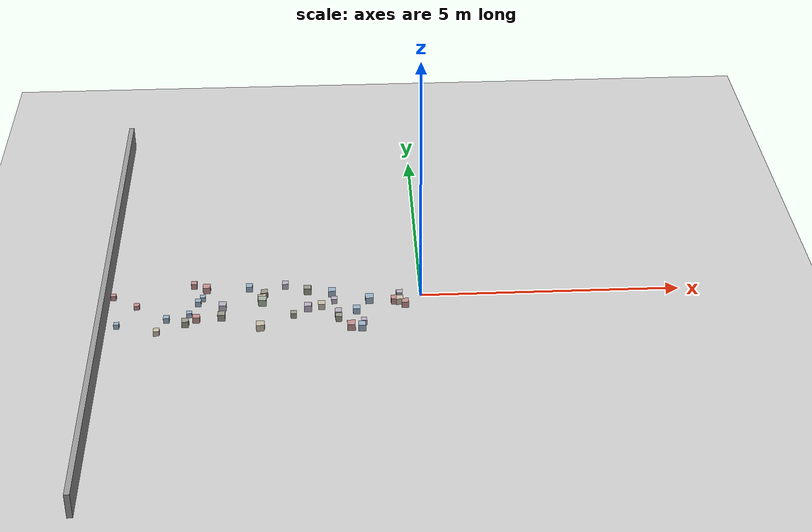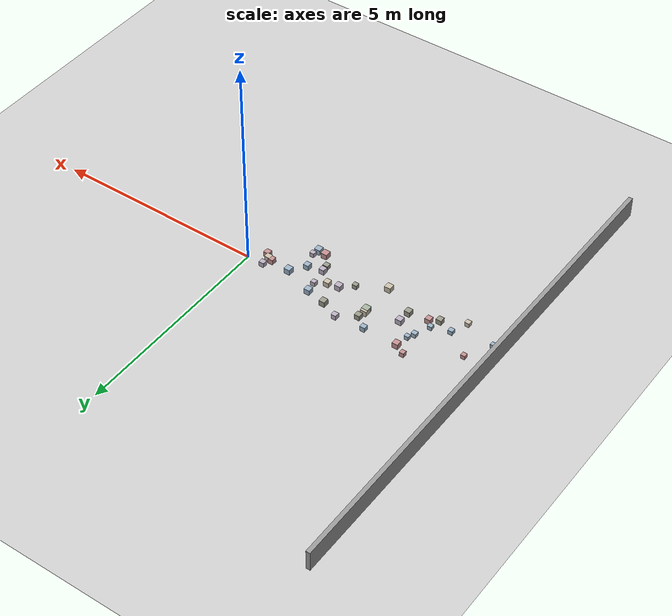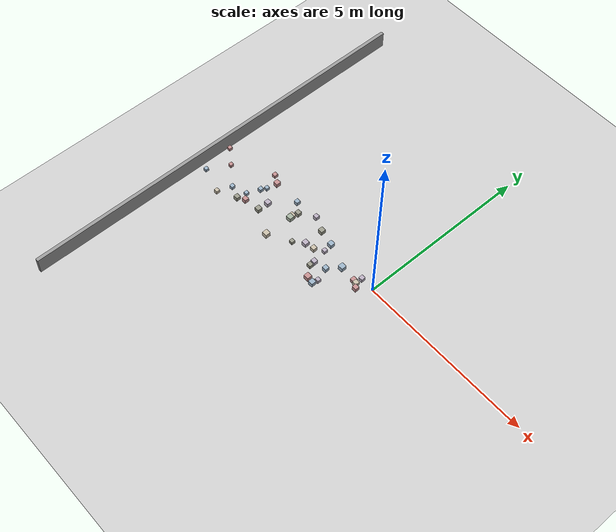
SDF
<sdf version="1.6">
 <world name="small_maze_world">
  <include><uri>model://ground_plane</uri></include>
  <include><uri>model://sun</uri></include>
  <model name="wall_west">
   <static>true</static>
   <pose>-6 0 0.25 0 0 0</pose>
   <link name="link">
    <collision name="collision"><geometry><box><size>0.1 12 0.5</size></box></geometry></collision>
    <visual name="visual">
     <geometry><box><size>0.1 12 0.5</size></box></geometry>
     <material><ambient>0.6 0.6 0.6 1</ambient></material>
    </visual>
   </link>
  </model>
  <model name="box_12">
   <static>false</static>
   <pose>-5.74 -0.78 0.05 0 0 0</pose>
   <link name="link">
    <inertial>
     <mass>0.2</mass>
     <inertia><ixx>0.001</ixx><iyy>0.001</iyy><izz>0.001</izz><ixy>0</ixy><ixz>0</ixz><iyz>0</iyz></inertia>
    </inertial>
    <collision name="collision"><geometry><box><size>0.1 0.1 0.1</size></box></geometry></collision>
    <visual name="visual">
     <geometry><box><size>0.1 0.1 0.1</size></box></geometry>
     <material><ambient>0.6 0.69 0.77 1</ambient><diffuse>0.6 0.69 0.77 1</diffuse></material>
    </visual>
   </link>
  </model>
  <model name="box_15">
   <static>false</static>
   <pose>-0.99 -0.14 0.05 0 0 0</pose>
   <link name="link">
    <inertial>
     <mass>0.2</mass>
     <inertia><ixx>0.001</ixx><iyy>0.001</iyy><izz>0.001</izz><ixy>0</ixy><ixz>0</ixz><iyz>0</iyz></inertia>
    </inertial>
    <collision name="collision"><geometry><box><size>0.15 0.15 0.15</size></box></geometry></collision>
    <visual name="visual">
     <geometry><box><size>0.15 0.15 0.15</size></box></geometry>
     <material><ambient>0.6 0.69 0.77 1</ambient><diffuse>0.6 0.69 0.77 1</diffuse></material>
    </visual>
   </link>
  </model>
  <model name="box_19">
   <static>false</static>
   <pose>-4.11 0.35 0.05 0 0 0</pose>
   <link name="link">
    <inertial>
     <mass>0.2</mass>
     <inertia><ixx>0.001</ixx><iyy>0.001</iyy><izz>0.001</izz><ixy>0</ixy><ixz>0</ixz><iyz>0</iyz></inertia>
    </inertial>
    <collision name="collision"><geometry><box><size>0.14 0.14 0.14</size></box></geometry></collision>
    <visual name="visual">
     <geometry><box><size>0.14 0.14 0.14</size></box></geometry>
     <material><ambient>0.76 0.56 0.56 1</ambient><diffuse>0.76 0.56 0.56 1</diffuse></material>
    </visual>
   </link>
  </model>
  <model name="box_25">
   <static>false</static>
   <pose>-2.16 -0.35 0.05 0 0 0</pose>
   <link name="link">
    <inertial>
     <mass>0.2</mass>
     <inertia><ixx>0.001</ixx><iyy>0.001</iyy><izz>0.001</izz><ixy>0</ixy><ixz>0</ixz><iyz>0</iyz></inertia>
    </inertial>
    <collision name="collision"><geometry><box><size>0.14 0.14 0.14</size></box></geometry></collision>
    <visual name="visual">
     <geometry><box><size>0.14 0.14 0.14</size></box></geometry>
     <material><ambient>0.72 0.68 0.75 1</ambient><diffuse>0.72 0.68 0.75 1</diffuse></material>
    </visual>
   </link>
  </model>
  <model name="box_27">
   <static>false</static>
   <pose>-1.9 -0.3 0.05 0 0 0</pose>
   <link name="link">
    <inertial>
     <mass>0.2</mass>
     <inertia><ixx>0.001</ixx><iyy>0.001</iyy><izz>0.001</izz><ixy>0</ixy><ixz>0</ixz><iyz>0</iyz></inertia>
    </inertial>
    <collision name="collision"><geometry><box><size>0.13 0.13 0.13</size></box></geometry></collision>
    <visual name="visual">
     <geometry><box><size>0.13 0.13 0.13</size></box></geometry>
     <material><ambient>0.78 0.74 0.66 1</ambient><diffuse>0.78 0.74 0.66 1</diffuse></material>
    </visual>
   </link>
  </model>
  <model name="box_50">
   <static>false</static>
   <pose>-1.59 -0.56 0.05 0 0 0</pose>
   <link name="link">
    <inertial>
     <mass>0.2</mass>
     <inertia><ixx>0.001</ixx><iyy>0.001</iyy><izz>0.001</izz><ixy>0</ixy><ixz>0</ixz><iyz>0</iyz></inertia>
    </inertial>
    <collision name="collision"><geometry><box><size>0.13 0.13 0.13</size></box></geometry></collision>
    <visual name="visual">
     <geometry><box><size>0.13 0.13 0.13</size></box></geometry>
     <material><ambient>0.72 0.68 0.75 1</ambient><diffuse>0.72 0.68 0.75 1</diffuse></material>
    </visual>
   </link>
  </model>
  <model name="box_58">
   <static>false</static>
   <pose>-2.43 -0.58 0.05 0 0 0</pose>
   <link name="link">
    <inertial>
     <mass>0.2</mass>
     <inertia><ixx>0.001</ixx><iyy>0.001</iyy><izz>0.001</izz><ixy>0</ixy><ixz>0</ixz><iyz>0</iyz></inertia>
    </inertial>
    <collision name="collision"><geometry><box><size>0.11 0.11 0.11</size></box></geometry></collision>
    <visual name="visual">
     <geometry><box><size>0.11 0.11 0.11</size></box></geometry>
     <material><ambient>0.6 0.6 0.54 1</ambient><diffuse>0.6 0.6 0.54 1</diffuse></material>
    </visual>
   </link>
  </model>
  <model name="box_90">
   <static>false</static>
   <pose>-3.04 -0.06 0.05 0 0 0</pose>
   <link name="link">
    <inertial>
     <mass>0.2</mass>
     <inertia><ixx>0.001</ixx><iyy>0.001</iyy><izz>0.001</izz><ixy>0</ixy><ixz>0</ixz><iyz>0</iyz></inertia>
    </inertial>
    <collision name="collision"><geometry><box><size>0.15 0.15 0.15</size></box></geometry></collision>
    <visual name="visual">
     <geometry><box><size>0.15 0.15 0.15</size></box></geometry>
     <material><ambient>0.78 0.74 0.66 1</ambient><diffuse>0.78 0.74 0.66 1</diffuse></material>
    </visual>
   </link>
  </model>
  <model name="box_99">
   <static>false</static>
   <pose>-4.98 -1.02 0.05 0 0 0</pose>
   <link name="link">
    <inertial>
     <mass>0.2</mass>
     <inertia><ixx>0.001</ixx><iyy>0.001</iyy><izz>0.001</izz><ixy>0</ixy><ixz>0</ixz><iyz>0</iyz></inertia>
    </inertial>
    <collision name="collision"><geometry><box><size>0.11 0.11 0.11</size></box></geometry></collision>
    <visual name="visual">
     <geometry><box><size>0.11 0.11 0.11</size></box></geometry>
     <material><ambient>0.78 0.74 0.66 1</ambient><diffuse>0.78 0.74 0.66 1</diffuse></material>
    </visual>
   </link>
  </model>
  <model name="box_100">
   <static>false</static>
   <pose>-3.03 -0.12 0.05 0 0 0</pose>
   <link name="link">
    <inertial>
     <mass>0.2</mass>
     <inertia><ixx>0.001</ixx><iyy>0.001</iyy><izz>0.001</izz><ixy>0</ixy><ixz>0</ixz><iyz>0</iyz></inertia>
    </inertial>
    <collision name="collision"><geometry><box><size>0.15 0.15 0.15</size></box></geometry></collision>
    <visual name="visual">
     <geometry><box><size>0.15 0.15 0.15</size></box></geometry>
     <material><ambient>0.64 0.69 0.62 1</ambient><diffuse>0.64 0.69 0.62 1</diffuse></material>
    </visual>
   </link>
  </model>
  <model name="box_105">
   <static>false</static>
   <pose>-4.17 0.04 0.05 0 0 0</pose>
   <link name="link">
    <inertial>
     <mass>0.2</mass>
     <inertia><ixx>0.001</ixx><iyy>0.001</iyy><izz>0.001</izz><ixy>0</ixy><ixz>0</ixz><iyz>0</iyz></inertia>
    </inertial>
    <collision name="collision"><geometry><box><size>0.1 0.1 0.1</size></box></geometry></collision>
    <visual name="visual">
     <geometry><box><size>0.1 0.1 0.1</size></box></geometry>
     <material><ambient>0.6 0.69 0.77 1</ambient><diffuse>0.6 0.69 0.77 1</diffuse></material>
    </visual>
   </link>
  </model>
  <model name="box_108">
   <static>false</static>
   <pose>-1.35 -0.99 0.05 0 0 0</pose>
   <link name="link">
    <inertial>
     <mass>0.2</mass>
     <inertia><ixx>0.001</ixx><iyy>0.001</iyy><izz>0.001</izz><ixy>0</ixy><ixz>0</ixz><iyz>0</iyz></inertia>
    </inertial>
    <collision name="collision"><geometry><box><size>0.15 0.15 0.15</size></box></geometry></collision>
    <visual name="visual">
     <geometry><box><size>0.15 0.15 0.15</size></box></geometry>
     <material><ambient>0.76 0.56 0.56 1</ambient><diffuse>0.76 0.56 0.56 1</diffuse></material>
    </visual>
   </link>
  </model>
  <model name="box_118">
   <static>false</static>
   <pose>-4.4 -0.48 0.05 0 0 0</pose>
   <link name="link">
    <inertial>
     <mass>0.2</mass>
     <inertia><ixx>0.001</ixx><iyy>0.001</iyy><izz>0.001</izz><ixy>0</ixy><ixz>0</ixz><iyz>0</iyz></inertia>
    </inertial>
    <collision name="collision"><geometry><box><size>0.1 0.1 0.1</size></box></geometry></collision>
    <visual name="visual">
     <geometry><box><size>0.1 0.1 0.1</size></box></geometry>
     <material><ambient>0.6 0.69 0.77 1</ambient><diffuse>0.6 0.69 0.77 1</diffuse></material>
    </visual>
   </link>
  </model>
  <model name="box_131">
   <static>false</static>
   <pose>-1.58 -0.71 0.05 0 0 0</pose>
   <link name="link">
    <inertial>
     <mass>0.2</mass>
     <inertia><ixx>0.001</ixx><iyy>0.001</iyy><izz>0.001</izz><ixy>0</ixy><ixz>0</ixz><iyz>0</iyz></inertia>
    </inertial>
    <collision name="collision"><geometry><box><size>0.12 0.12 0.12</size></box></geometry></collision>
    <visual name="visual">
     <geometry><box><size>0.12 0.12 0.12</size></box></geometry>
     <material><ambient>0.6 0.6 0.54 1</ambient><diffuse>0.6 0.6 0.54 1</diffuse></material>
    </visual>
   </link>
  </model>
  <model name="box_172">
   <static>false</static>
   <pose>-3.0 0.13 0.05 0 0 0</pose>
   <link name="link">
    <inertial>
     <mass>0.2</mass>
     <inertia><ixx>0.001</ixx><iyy>0.001</iyy><izz>0.001</izz><ixy>0</ixy><ixz>0</ixz><iyz>0</iyz></inertia>
    </inertial>
    <collision name="collision"><geometry><box><size>0.13 0.13 0.13</size></box></geometry></collision>
    <visual name="visual">
     <geometry><box><size>0.13 0.13 0.13</size></box></geometry>
     <material><ambient>0.6 0.6 0.54 1</ambient><diffuse>0.6 0.6 0.54 1</diffuse></material>
    </visual>
   </link>
  </model>
  <model name="box_207">
   <static>false</static>
   <pose>-0.41 0.01 0.05 0 0 0</pose>
   <link name="link">
    <inertial>
     <mass>0.2</mass>
     <inertia><ixx>0.001</ixx><iyy>0.001</iyy><izz>0.001</izz><ixy>0</ixy><ixz>0</ixz><iyz>0</iyz></inertia>
    </inertial>
    <collision name="collision"><geometry><box><size>0.12 0.12 0.12</size></box></geometry></collision>
    <visual name="visual">
     <geometry><box><size>0.12 0.12 0.12</size></box></geometry>
     <material><ambient>0.72 0.68 0.75 1</ambient><diffuse>0.72 0.68 0.75 1</diffuse></material>
    </visual>
   </link>
  </model>
  <model name="box_237">
   <static>false</static>
   <pose>-0.41 -0.2 0.05 0 0 0</pose>
   <link name="link">
    <inertial>
     <mass>0.2</mass>
     <inertia><ixx>0.001</ixx><iyy>0.001</iyy><izz>0.001</izz><ixy>0</ixy><ixz>0</ixz><iyz>0</iyz></inertia>
    </inertial>
    <collision name="collision"><geometry><box><size>0.13 0.13 0.13</size></box></geometry></collision>
    <visual name="visual">
     <geometry><box><size>0.13 0.13 0.13</size></box></geometry>
     <material><ambient>0.78 0.74 0.66 1</ambient><diffuse>0.78 0.74 0.66 1</diffuse></material>
    </visual>
   </link>
  </model>
  <model name="box_254">
   <static>false</static>
   <pose>-3.05 -0.93 0.05 0 0 0</pose>
   <link name="link">
    <inertial>
     <mass>0.2</mass>
     <inertia><ixx>0.001</ixx><iyy>0.001</iyy><izz>0.001</izz><ixy>0</ixy><ixz>0</ixz><iyz>0</iyz></inertia>
    </inertial>
    <collision name="collision"><geometry><box><size>0.15 0.15 0.15</size></box></geometry></collision>
    <visual name="visual">
     <geometry><box><size>0.15 0.15 0.15</size></box></geometry>
     <material><ambient>0.78 0.74 0.66 1</ambient><diffuse>0.78 0.74 0.66 1</diffuse></material>
    </visual>
   </link>
  </model>
  <model name="box_255">
   <static>false</static>
   <pose>-4.26 -0.63 0.05 0 0 0</pose>
   <link name="link">
    <inertial>
     <mass>0.2</mass>
     <inertia><ixx>0.001</ixx><iyy>0.001</iyy><izz>0.001</izz><ixy>0</ixy><ixz>0</ixz><iyz>0</iyz></inertia>
    </inertial>
    <collision name="collision"><geometry><box><size>0.13 0.13 0.13</size></box></geometry></collision>
    <visual name="visual">
     <geometry><box><size>0.13 0.13 0.13</size></box></geometry>
     <material><ambient>0.76 0.56 0.56 1</ambient><diffuse>0.76 0.56 0.56 1</diffuse></material>
    </visual>
   </link>
  </model>
  <model name="box_264">
   <static>false</static>
   <pose>-4.25 -0.11 0.05 0 0 0</pose>
   <link name="link">
    <inertial>
     <mass>0.2</mass>
     <inertia><ixx>0.001</ixx><iyy>0.001</iyy><izz>0.001</izz><ixy>0</ixy><ixz>0</ixz><iyz>0</iyz></inertia>
    </inertial>
    <collision name="collision"><geometry><box><size>0.11 0.11 0.11</size></box></geometry></collision>
    <visual name="visual">
     <geometry><box><size>0.11 0.11 0.11</size></box></geometry>
     <material><ambient>0.6 0.69 0.77 1</ambient><diffuse>0.6 0.69 0.77 1</diffuse></material>
    </visual>
   </link>
  </model>
  <model name="box_294">
   <static>false</static>
   <pose>-0.51 -0.18 0.05 0 0 0</pose>
   <link name="link">
    <inertial>
     <mass>0.2</mass>
     <inertia><ixx>0.001</ixx><iyy>0.001</iyy><izz>0.001</izz><ixy>0</ixy><ixz>0</ixz><iyz>0</iyz></inertia>
    </inertial>
    <collision name="collision"><geometry><box><size>0.13 0.13 0.13</size></box></geometry></collision>
    <visual name="visual">
     <geometry><box><size>0.13 0.13 0.13</size></box></geometry>
     <material><ambient>0.76 0.56 0.56 1</ambient><diffuse>0.76 0.56 0.56 1</diffuse></material>
    </visual>
   </link>
  </model>
  <model name="box_311">
   <static>false</static>
   <pose>-4.46 -0.75 0.05 0 0 0</pose>
   <link name="link">
    <inertial>
     <mass>0.2</mass>
     <inertia><ixx>0.001</ixx><iyy>0.001</iyy><izz>0.001</izz><ixy>0</ixy><ixz>0</ixz><iyz>0</iyz></inertia>
    </inertial>
    <collision name="collision"><geometry><box><size>0.13 0.13 0.13</size></box></geometry></collision>
    <visual name="visual">
     <geometry><box><size>0.13 0.13 0.13</size></box></geometry>
     <material><ambient>0.6 0.6 0.54 1</ambient><diffuse>0.6 0.6 0.54 1</diffuse></material>
    </visual>
   </link>
  </model>
  <model name="box_330">
   <static>false</static>
   <pose>-1.15 -1.02 0.05 0 0 0</pose>
   <link name="link">
    <inertial>
     <mass>0.2</mass>
     <inertia><ixx>0.001</ixx><iyy>0.001</iyy><izz>0.001</izz><ixy>0</ixy><ixz>0</ixz><iyz>0</iyz></inertia>
    </inertial>
    <collision name="collision"><geometry><box><size>0.14 0.14 0.14</size></box></geometry></collision>
    <visual name="visual">
     <geometry><box><size>0.14 0.14 0.14</size></box></geometry>
     <material><ambient>0.6 0.69 0.77 1</ambient><diffuse>0.6 0.69 0.77 1</diffuse></material>
    </visual>
   </link>
  </model>
  <model name="box_342">
   <static>false</static>
   <pose>-1.11 -0.86 0.05 0 0 0</pose>
   <link name="link">
    <inertial>
     <mass>0.2</mass>
     <inertia><ixx>0.001</ixx><iyy>0.001</iyy><izz>0.001</izz><ixy>0</ixy><ixz>0</ixz><iyz>0</iyz></inertia>
    </inertial>
    <collision name="collision"><geometry><box><size>0.11 0.11 0.11</size></box></geometry></collision>
    <visual name="visual">
     <geometry><box><size>0.11 0.11 0.11</size></box></geometry>
     <material><ambient>0.72 0.68 0.75 1</ambient><diffuse>0.72 0.68 0.75 1</diffuse></material>
    </visual>
   </link>
  </model>
  <model name="box_343">
   <static>false</static>
   <pose>-3.29 0.35 0.05 0 0 0</pose>
   <link name="link">
    <inertial>
     <mass>0.2</mass>
     <inertia><ixx>0.001</ixx><iyy>0.001</iyy><izz>0.001</izz><ixy>0</ixy><ixz>0</ixz><iyz>0</iyz></inertia>
    </inertial>
    <collision name="collision"><geometry><box><size>0.12 0.12 0.12</size></box></geometry></collision>
    <visual name="visual">
     <geometry><box><size>0.12 0.12 0.12</size></box></geometry>
     <material><ambient>0.6 0.69 0.77 1</ambient><diffuse>0.6 0.69 0.77 1</diffuse></material>
    </visual>
   </link>
  </model>
  <model name="box_353">
   <static>false</static>
   <pose>-2.17 0.22 0.05 0 0 0</pose>
   <link name="link">
    <inertial>
     <mass>0.2</mass>
     <inertia><ixx>0.001</ixx><iyy>0.001</iyy><izz>0.001</izz><ixy>0</ixy><ixz>0</ixz><iyz>0</iyz></inertia>
    </inertial>
    <collision name="collision"><geometry><box><size>0.14 0.14 0.14</size></box></geometry></collision>
    <visual name="visual">
     <geometry><box><size>0.14 0.14 0.14</size></box></geometry>
     <material><ambient>0.6 0.6 0.54 1</ambient><diffuse>0.6 0.6 0.54 1</diffuse></material>
    </visual>
   </link>
  </model>
  <model name="box_358">
   <static>false</static>
   <pose>-3.79 -0.57 0.05 0 0 0</pose>
   <link name="link">
    <inertial>
     <mass>0.2</mass>
     <inertia><ixx>0.001</ixx><iyy>0.001</iyy><izz>0.001</izz><ixy>0</ixy><ixz>0</ixz><iyz>0</iyz></inertia>
    </inertial>
    <collision name="collision"><geometry><box><size>0.14 0.14 0.14</size></box></geometry></collision>
    <visual name="visual">
     <geometry><box><size>0.14 0.14 0.14</size></box></geometry>
     <material><ambient>0.6 0.6 0.54 1</ambient><diffuse>0.6 0.6 0.54 1</diffuse></material>
    </visual>
   </link>
  </model>
  <model name="box_361">
   <static>false</static>
   <pose>-5.88 0.16 0.05 0 0 0</pose>
   <link name="link">
    <inertial>
     <mass>0.2</mass>
     <inertia><ixx>0.001</ixx><iyy>0.001</iyy><izz>0.001</izz><ixy>0</ixy><ixz>0</ixz><iyz>0</iyz></inertia>
    </inertial>
    <collision name="collision"><geometry><box><size>0.1 0.1 0.1</size></box></geometry></collision>
    <visual name="visual">
     <geometry><box><size>0.1 0.1 0.1</size></box></geometry>
     <material><ambient>0.76 0.56 0.56 1</ambient><diffuse>0.76 0.56 0.56 1</diffuse></material>
    </visual>
   </link>
  </model>
  <model name="box_374">
   <static>false</static>
   <pose>-2.6 0.41 0.05 0 0 0</pose>
   <link name="link">
    <inertial>
     <mass>0.2</mass>
     <inertia><ixx>0.001</ixx><iyy>0.001</iyy><izz>0.001</izz><ixy>0</ixy><ixz>0</ixz><iyz>0</iyz></inertia>
    </inertial>
    <collision name="collision"><geometry><box><size>0.12 0.12 0.12</size></box></geometry></collision>
    <visual name="visual">
     <geometry><box><size>0.12 0.12 0.12</size></box></geometry>
     <material><ambient>0.72 0.68 0.75 1</ambient><diffuse>0.72 0.68 0.75 1</diffuse></material>
    </visual>
   </link>
  </model>
  <model name="box_376">
   <static>false</static>
   <pose>-0.31 -0.3 0.05 0 0 0</pose>
   <link name="link">
    <inertial>
     <mass>0.2</mass>
     <inertia><ixx>0.001</ixx><iyy>0.001</iyy><izz>0.001</izz><ixy>0</ixy><ixz>0</ixz><iyz>0</iyz></inertia>
    </inertial>
    <collision name="collision"><geometry><box><size>0.13 0.13 0.13</size></box></geometry></collision>
    <visual name="visual">
     <geometry><box><size>0.13 0.13 0.13</size></box></geometry>
     <material><ambient>0.76 0.56 0.56 1</ambient><diffuse>0.76 0.56 0.56 1</diffuse></material>
    </visual>
   </link>
  </model>
  <model name="box_384">
   <static>false</static>
   <pose>-4.36 0.49 0.05 0 0 0</pose>
   <link name="link">
    <inertial>
     <mass>0.2</mass>
     <inertia><ixx>0.001</ixx><iyy>0.001</iyy><izz>0.001</izz><ixy>0</ixy><ixz>0</ixz><iyz>0</iyz></inertia>
    </inertial>
    <collision name="collision"><geometry><box><size>0.11 0.11 0.11</size></box></geometry></collision>
    <visual name="visual">
     <geometry><box><size>0.11 0.11 0.11</size></box></geometry>
     <material><ambient>0.76 0.56 0.56 1</ambient><diffuse>0.76 0.56 0.56 1</diffuse></material>
    </visual>
   </link>
  </model>
  <model name="box_388">
   <static>false</static>
   <pose>-1.66 -0.14 0.05 0 0 0</pose>
   <link name="link">
    <inertial>
     <mass>0.2</mass>
     <inertia><ixx>0.001</ixx><iyy>0.001</iyy><izz>0.001</izz><ixy>0</ixy><ixz>0</ixz><iyz>0</iyz></inertia>
    </inertial>
    <collision name="collision"><geometry><box><size>0.11 0.11 0.11</size></box></geometry></collision>
    <visual name="visual">
     <geometry><box><size>0.11 0.11 0.11</size></box></geometry>
     <material><ambient>0.72 0.68 0.75 1</ambient><diffuse>0.72 0.68 0.75 1</diffuse></material>
    </visual>
   </link>
  </model>
  <model name="box_398">
   <static>false</static>
   <pose>-3.78 -0.26 0.05 0 0 0</pose>
   <link name="link">
    <inertial>
     <mass>0.2</mass>
     <inertia><ixx>0.001</ixx><iyy>0.001</iyy><izz>0.001</izz><ixy>0</ixy><ixz>0</ixz><iyz>0</iyz></inertia>
    </inertial>
    <collision name="collision"><geometry><box><size>0.14 0.14 0.14</size></box></geometry></collision>
    <visual name="visual">
     <geometry><box><size>0.14 0.14 0.14</size></box></geometry>
     <material><ambient>0.72 0.68 0.75 1</ambient><diffuse>0.72 0.68 0.75 1</diffuse></material>
    </visual>
   </link>
  </model>
  <model name="box_436">
   <static>false</static>
   <pose>-1.7 0.12 0.05 0 0 0</pose>
   <link name="link">
    <inertial>
     <mass>0.2</mass>
     <inertia><ixx>0.001</ixx><iyy>0.001</iyy><izz>0.001</izz><ixy>0</ixy><ixz>0</ixz><iyz>0</iyz></inertia>
    </inertial>
    <collision name="collision"><geometry><box><size>0.14 0.14 0.14</size></box></geometry></collision>
    <visual name="visual">
     <geometry><box><size>0.14 0.14 0.14</size></box></geometry>
     <material><ambient>0.6 0.69 0.77 1</ambient><diffuse>0.6 0.69 0.77 1</diffuse></material>
    </visual>
   </link>
  </model>
  <model name="box_441">
   <static>false</static>
   <pose>-4.82 -0.62 0.05 0 0 0</pose>
   <link name="link">
    <inertial>
     <mass>0.2</mass>
     <inertia><ixx>0.001</ixx><iyy>0.001</iyy><izz>0.001</izz><ixy>0</ixy><ixz>0</ixz><iyz>0</iyz></inertia>
    </inertial>
    <collision name="collision"><geometry><box><size>0.11 0.11 0.11</size></box></geometry></collision>
    <visual name="visual">
     <geometry><box><size>0.11 0.11 0.11</size></box></geometry>
     <material><ambient>0.6 0.69 0.77 1</ambient><diffuse>0.6 0.69 0.77 1</diffuse></material>
    </visual>
   </link>
  </model>
  <model name="box_444">
   <static>false</static>
   <pose>-5.41 -0.18 0.05 0 0 0</pose>
   <link name="link">
    <inertial>
     <mass>0.2</mass>
     <inertia><ixx>0.001</ixx><iyy>0.001</iyy><izz>0.001</izz><ixy>0</ixy><ixz>0</ixz><iyz>0</iyz></inertia>
    </inertial>
    <collision name="collision"><geometry><box><size>0.1 0.1 0.1</size></box></geometry></collision>
    <visual name="visual">
     <geometry><box><size>0.1 0.1 0.1</size></box></geometry>
     <material><ambient>0.76 0.56 0.56 1</ambient><diffuse>0.76 0.56 0.56 1</diffuse></material>
    </visual>
   </link>
  </model>
  <model name="box_448">
   <static>false</static>
   <pose>-1.24 -0.48 0.05 0 0 0</pose>
   <link name="link">
    <inertial>
     <mass>0.2</mass>
     <inertia><ixx>0.001</ixx><iyy>0.001</iyy><izz>0.001</izz><ixy>0</ixy><ixz>0</ixz><iyz>0</iyz></inertia>
    </inertial>
    <collision name="collision"><geometry><box><size>0.13 0.13 0.13</size></box></geometry></collision>
    <visual name="visual">
     <geometry><box><size>0.13 0.13 0.13</size></box></geometry>
     <material><ambient>0.6 0.69 0.77 1</ambient><diffuse>0.6 0.69 0.77 1</diffuse></material>
    </visual>
   </link>
  </model>
 </world>
</sdf>
